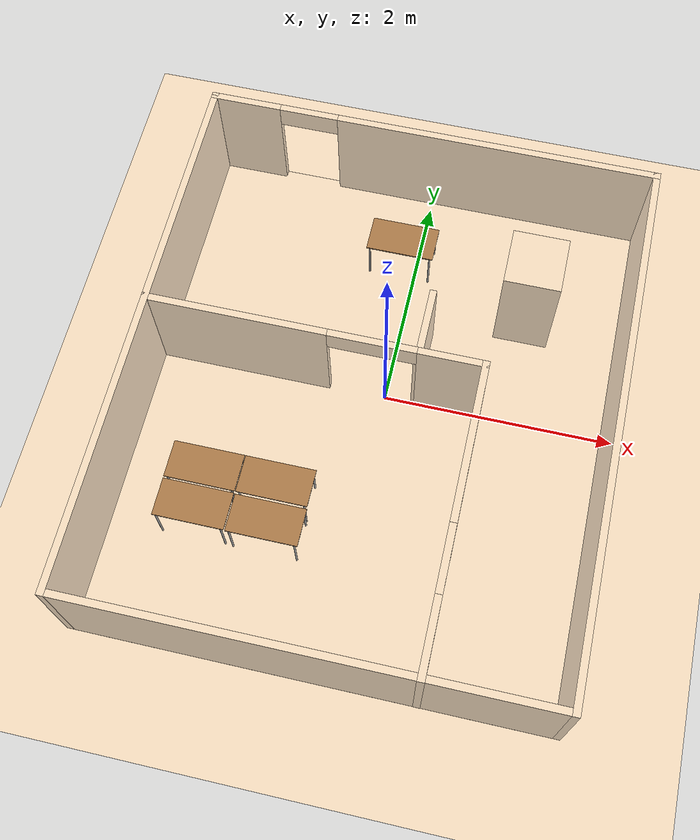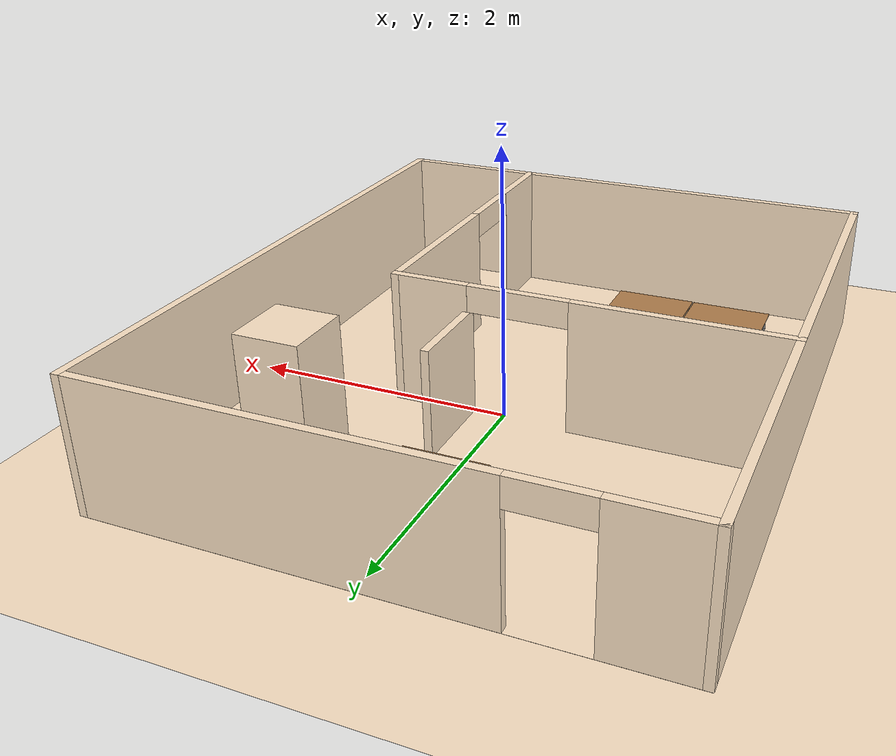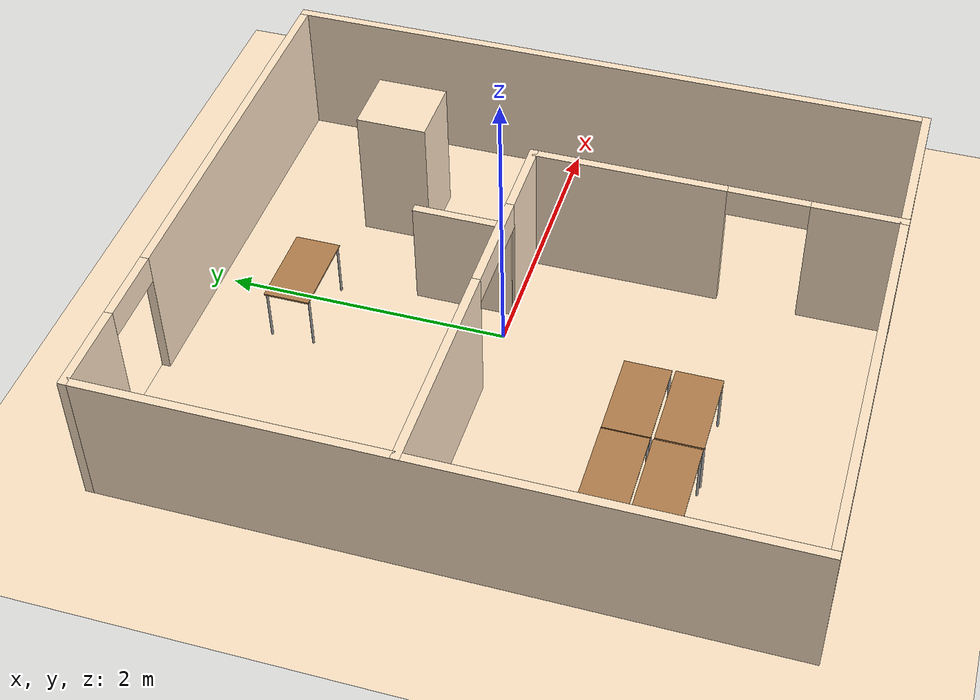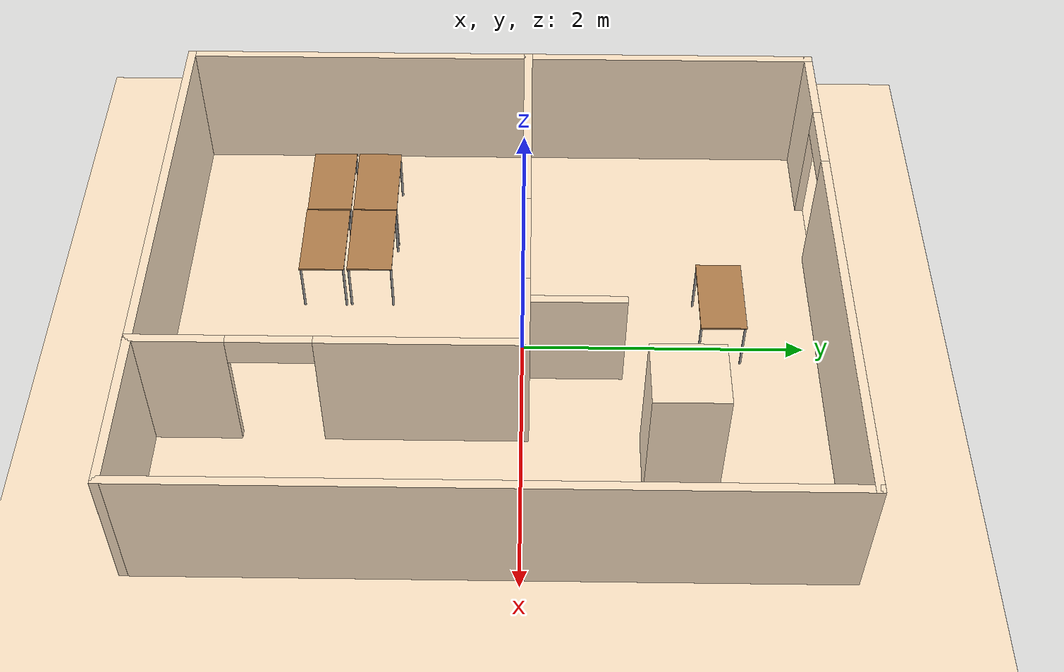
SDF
<sdf version="1.7">
 <world name="default">
  <light name="sun" type="directional">
   <pose>0 0 10 0 -0 0</pose>
   <diffuse>0.8 0.8 0.8 1</diffuse>
   <specular>0.2 0.2 0.2 1</specular>
   <attenuation>
    <range>1000</range>
    <constant>0.9</constant>
    <linear>0.01</linear>
    <quadratic>0.001</quadratic>
   </attenuation>
   <direction>-0.5 0.1 -0.9</direction>
   <spot><inner_angle>0</inner_angle><outer_angle>0</outer_angle><falloff>0</falloff></spot>
  </light>
  <model name="ground_plane">
   <static>1</static>
   <link name="link">
    <collision name="collision">
     <geometry><plane><normal>0 0 1</normal><size>4 5</size></plane></geometry>
     <surface>
      <contact><collide_bitmask>65535</collide_bitmask></contact>
      <friction><ode><mu>100</mu><mu2>50</mu2></ode></friction>
     </surface>
    </collision>
    <visual name="visual">
     <cast_shadows>0</cast_shadows>
     <geometry><plane><normal>0 0 1</normal><size>4 5</size></plane></geometry>
     <material>
      <script><uri>file://media/materials/scripts/gazebo.material</uri><name>Gazebo/Grey</name></script>
      <ambient>1 0.901961 0.780392 1</ambient>
     </material>
    </visual>
   </link>
  </model>
  <gravity>0 0 -9.8</gravity>
  <magnetic_field>6e-06 2.3e-05 -4.2e-05</magnetic_field>
  <atmosphere type="adiabatic"/>
  <physics type="ode">
   <max_step_size>0.001</max_step_size>
   <real_time_factor>1</real_time_factor>
   <real_time_update_rate>1000</real_time_update_rate>
  </physics>
  <scene><ambient>0.4 0.4 0.4 1</ambient><background>0.7 0.7 0.7 1</background><shadows>1</shadows></scene>
  <audio><device>default</device></audio>
  <spherical_coordinates>
   <surface_model>EARTH_WGS84</surface_model>
   <latitude_deg>0</latitude_deg>
   <longitude_deg>0</longitude_deg>
   <elevation>0</elevation>
   <heading_deg>0</heading_deg>
  </spherical_coordinates>
  <include><uri>model://wall</uri><pose>-0.053344 -0.1996104 0 0 -0 0</pose></include>
  <include><uri>model://Table</uri><pose>-1.27677 -1.09894 0 0 -0 0</pose><name>Table_0</name></include>
  <include><uri>model://Table</uri><pose>-0.668968 -1.09972 0 0 -0 0</pose><name>Table_1</name></include>
  <include><uri>model://Table</uri><pose>-1.275796 -1.436376 0 0 -0 0</pose><name>Table_2</name></include>
  <include><uri>model://Table</uri><pose>-0.664404 -1.441344 0 0 -0 0</pose><name>Table_3</name></include>
  <include><uri>model://Table</uri><pose>-0.1450252 1.390664 0 0 -0 0</pose><name>Table_4</name></include>
 </world>
</sdf>

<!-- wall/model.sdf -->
<sdf version='1.7'>
  <model name='wall_scaled'>
    <!-- 모델 전체 포즈 (스케일링 적용) -->
    <pose>0.665984 -1.08792 0 0 -0 0</pose>

    <!-- 바닥 링크 -->
    <link name="floor">
      <collision name="floor_collision">
        <geometry>
          <box>
            <size>4.0 4.7 0.0004</size>
          </box>
        </geometry>
        <pose>0 0.000834 0.0 0 0 0</pose>
      </collision>
      <visual name="floor_visual">
        <geometry>
          <box>
            <size>4.0 4.7 0.0004</size> <!-- 동일 -->
          </box>
        </geometry>
        <material>
          <script>
            <uri>file://media/materials/scripts/gazebo.material</uri>
            <name>Gazebo/Grey</name> <!-- 벽과 같은 색상 -->
          </script>
          <ambient>1 0.901961 0.780392 1</ambient>
        </material>
        <pose>0 0.000834 0.0 0 0 0</pose> <!-- 동일 -->
      </visual>
    </link>

    <!-- Wall_11 링크 -->
    <link name='Wall_11'>
      <collision name='Wall_11_Collision'>
        <geometry>
          <box>
            <size>4.7 0.06 1.0</size>
          </box>
        </geometry>
        <pose>0 0 0.5 0 -0 0</pose>
      </collision>
      <visual name='Wall_11_Visual'>
        <pose>0 0 0.5 0 -0 0</pose> <!-- 동일 -->
        <geometry>
          <box>
            <size>4.7 0.06 1.0</size> <!-- 동일 -->
          </box>
        </geometry>
        <material>
          <script>
            <uri>file://media/materials/scripts/gazebo.material</uri>
            <name>Gazebo/Grey</name>
          </script>
          <ambient>1 0.901961 0.780392 1</ambient>
        </material>
        <meta>
          <layer>0</layer>
        </meta>
      </visual>
      <pose>-1.97532 0.000834 0 0 -0 -1.5708</pose> <!-- x:-4.9383*0.4≈-1.97532, y:0.002085*0.4≈0.000834, z:0*0.4=0, yaw:-1.5708 -->
    </link>

    <!-- Wall_13 링크 -->
    <link name='Wall_13'>
      <collision name='Wall_13_Collision'>
        <geometry>
          <box>
            <size>4.7 0.06 1.0</size> <!-- 동일 -->
          </box>
        </geometry>
        <pose>0 0 0.5 0 -0 0</pose> <!-- 동일 -->
      </collision>
      <visual name='Wall_13_Visual'>
        <pose>0 0 0.5 0 -0 0</pose> <!-- 동일 -->
        <geometry>
          <box>
            <size>4.7 0.06 1.0</size> <!-- 동일 -->
          </box>
        </geometry>
        <material>
          <script>
            <uri>file://media/materials/scripts/gazebo.material</uri>
            <name>Gazebo/Grey</name>
          </script>
          <ambient>1 0.901961 0.780392 1</ambient>
        </material>
        <meta>
          <layer>0</layer>
        </meta>
      </visual>
      <pose>1.97532 0.000834 0 0 -0 -1.5708</pose> <!-- x:4.9383*0.4≈1.97532, y:0.002085*0.4≈0.000834, yaw:-1.5708 -->
    </link>

    <!-- Wall_17 링크 -->
    <link name='Wall_17'>
      <collision name='Wall_17_Collision'>
        <geometry>
          <box>
            <size>4.01064 0.06 1.0</size>
          </box>
        </geometry>
        <pose>0 0 0.5 0 -0 0</pose> <!-- 동일 -->
      </collision>
      <visual name='Wall_17_Visual'>
        <pose>0 0 0.5 0 -0 0</pose> <!-- 동일 -->
        <geometry>
          <box>
            <size>4.01064 0.06 1.0</size> <!-- 동일 -->
          </box>
        </geometry>
        <material>
          <script>
            <uri>file://media/materials/scripts/gazebo.material</uri>
            <name>Gazebo/Grey</name>
          </script>
          <ambient>1 0.901961 0.780392 1</ambient>
        </material>
        <meta>
          <layer>0</layer>
        </meta>
      </visual>
      <pose>0 -2.31916 0 0 -0 0</pose>
    </link>

    <!-- Wall_25 링크 -->
    <link name='Wall_25'>
      <pose>0.86568 -1.050836 0 0 -0 1.5708</pose> <!-- x:2.1642*0.4≈0.86568, y:-2.62709*0.4≈-1.050836, yaw:1.5708 -->

      <!-- Wall_25_Visual_0 -->
      <visual name='Wall_25_Visual_0'>
        <pose>-0.97362 0 0.5 0 -0 0</pose>
        <geometry>
          <box>
            <size>0.652764 0.06 1.0</size>
          </box>
        </geometry>
        <material>
          <script>
            <uri>file://media/materials/scripts/gazebo.material</uri>
            <name>Gazebo/Grey</name>
          </script>
          <ambient>1 0.901961 0.780392 1</ambient>
        </material>
        <meta>
          <layer>0</layer>
        </meta>
      </visual>

      <!-- Wall_25_Collision_0 -->
      <collision name='Wall_25_Collision_0'>
        <geometry>
          <box>
            <size>0.652764 0.06 1.0</size> <!-- 동일 -->
          </box>
        </geometry>
        <pose>-0.97362 0 0.5 0 -0 0</pose> <!-- 동일 -->
      </collision>

      <!-- Wall_25_Visual_1 -->
      <visual name='Wall_25_Visual_1'>
        <pose>0.60752 0 0.5 0 -0 0</pose>
        <geometry>
          <box>
            <size>1.38496 0.06 1.0</size>
          </box>
        </geometry>
        <material>
          <script>
            <uri>file://media/materials/scripts/gazebo.material</uri>
            <name>Gazebo/Grey</name>
          </script>
          <ambient>1 0.901961 0.780392 1</ambient>
        </material>
        <meta>
          <layer>0</layer>
        </meta>
      </visual>

      <!-- Wall_25_Collision_1 -->
      <collision name='Wall_25_Collision_1'>
        <geometry>
          <box>
            <size>1.38496 0.06 1.0</size> <!-- 동일 -->
          </box>
        </geometry>
        <pose>0.60752 0 0.5 0 -0 0</pose> <!-- 동일 -->
      </collision>

      <!-- Wall_25_Visual_2 -->
      <visual name='Wall_25_Visual_2'>
        <pose>-0.366099 0 0.9 0 -0 0</pose>
        <geometry>
          <box>
            <size>0.562276 0.06 0.2</size>
          </box>
        </geometry>
        <material>
          <script>
            <uri>file://media/materials/scripts/gazebo.material</uri>
            <name>Gazebo/Grey</name>
          </script>
          <ambient>1 0.901961 0.780392 1</ambient>
        </material>
        <meta>
          <layer>0</layer>
        </meta>
      </visual>

      <!-- Wall_25_Collision_2 -->
      <collision name='Wall_25_Collision_2'>
        <geometry>
          <box>
            <size>0.562276 0.06 0.2</size> <!-- 동일 -->
          </box>
        </geometry>
        <pose>-0.366099 0 0.9 0 -0 0</pose> <!-- 동일 -->
      </collision>
    </link>

    <!-- Wall_26 링크 -->
    <link name='Wall_26'>
      <pose>-0.55432 0.219166 0 0 -0 3.14159</pose> <!-- x:-1.3858*0.4≈-0.55432, y:0.547915*0.4≈0.219166, yaw:3.14159 -->

      <collision name='Wall_26_Collision_0'>
        <geometry>
          <box>
            <size>0.588512 0.06 1.0</size>
          </box>
        </geometry>
        <pose>-1.155744 0 0.5 0 -0 0</pose>
      </collision>
      <visual name='Wall_26_Visual_0'>
        <pose>-1.155744 0 0.5 0 -0 0</pose> <!-- 동일 -->
        <geometry>
          <box>
            <size>0.588512 0.06 1.0</size> <!-- 동일 -->
          </box>
        </geometry>
        <material>
          <script>
            <uri>file://media/materials/scripts/gazebo.material</uri>
            <name>Gazebo/Grey</name>
          </script>
          <ambient>1 0.901961 0.780392 1</ambient>
        </material>
        <meta>
          <layer>0</layer>
        </meta>
      </visual>

      <collision name='Wall_26_Collision_1'>
        <geometry>
          <box>
            <size>1.563116 0.06 1.0</size>
          </box>
        </geometry>
        <pose>0.668444 0 0.5 0 -0 3.14159</pose> <!-- x:0.668444, y:0, z:0.5, yaw:3.14159 -->
      </collision>
      <visual name='Wall_26_Visual_1'>
        <pose>0.668444 0 0.5 0 -0 3.14159</pose> <!-- x:1.67111*0.4≈0.668444, y:0, z:1.25*0.4=0.5, yaw:3.14159 -->
        <geometry>
          <box>
            <size>1.563116 0.06 1.0</size> <!-- 동일 -->
          </box>
        </geometry>
        <material>
          <script>
            <uri>file://media/materials/scripts/gazebo.material</uri>
            <name>Gazebo/Grey</name>
          </script>
          <ambient>1 0.901961 0.780392 1</ambient>
        </material>
        <meta>
          <layer>0</layer>
        </meta>
      </visual>

      <collision name='Wall_26_Collision_2'>
        <geometry>
          <box>
            <size>0.748372 0.06 0.2</size>
          </box>
        </geometry>
        <pose>-0.487298 0 0.9 0 -0 0</pose>
      </collision>
      <visual name='Wall_26_Visual_2'>
        <pose>-0.487298 0 0.9 0 -0 0</pose> <!-- 동일 -->
        <geometry>
          <box>
            <size>0.748372 0.06 0.2</size> <!-- 동일 -->
          </box>
        </geometry>
        <material>
          <script>
            <uri>file://media/materials/scripts/gazebo.material</uri>
            <name>Gazebo/Grey</name>
          </script>
          <ambient>1 0.901961 0.780392 1</ambient>
        </material>
        <meta>
          <layer>0</layer>
        </meta>
      </visual>
    </link>

    <!-- Wall_28 링크 -->
    <link name='Wall_28'>
      <collision name='Wall_28_Collision'>
        <geometry>
          <box>
            <size>0.7 0.06 0.8</size>
          </box>
        </geometry>
        <pose>0 0 0.4 0 -0 0</pose>
      </collision>
      <visual name='Wall_28_Visual'>
        <pose>0 0 0.4 0 -0 0</pose> <!-- 동일 -->
        <geometry>
          <box>
            <size>0.7 0.06 0.8</size> <!-- 동일 -->
          </box>
        </geometry>
        <material>
          <script>
            <uri>file://media/materials/scripts/gazebo.material</uri>
            <name>Gazebo/Grey</name>
          </script>
          <ambient>1 0.901961 0.780392 1</ambient>
        </material>
        <meta>
          <layer>0</layer>
        </meta>
      </visual>
      <pose>0.3092168 0.55352 0 0 -0 1.5708</pose> <!-- x:0.773042*0.4≈0.3092168, y:1.3838*0.4≈0.55352, yaw:1.5708 -->
    </link>

    <!-- Wall_32 링크 -->
    <link name='Wall_32'>
      <collision name='Wall_32_Collision'>
        <geometry>
          <box>
            <size>0.5 0.48 1.0</size>
          </box>
        </geometry>
        <pose>0 0 0.5 0 -0 0</pose>
      </collision>
      <visual name='Wall_32_Visual'>
        <pose>0 0 0.5 0 -0 0</pose> <!-- 동일 -->
        <geometry>
          <box>
            <size>0.5 0.48 1.0</size> <!-- 동일 -->
          </box>
        </geometry>
        <material>
          <script>
            <uri>file://media/materials/scripts/gazebo.material</uri>
            <name>Gazebo/Grey</name>
          </script>
          <ambient>1 0.901961 0.780392 1</ambient>
        </material>
        <meta>
          <layer>0</layer>
        </meta>
      </visual>
      <pose>1.106388 1.254576 0 0 -0 -1.5708</pose> <!-- x:2.76597*0.4≈1.106388, y:3.13644*0.4≈1.254576, yaw:-1.5708 -->
    </link>

    <!-- Wall_9 링크 -->
    <link name='Wall_9'>
      <pose>0 2.32083 0 0 -0 0</pose>

      <visual name='Wall_9_Visual_0'>
        <pose>-1.68861 0 0.5 0 -0 0</pose>
        <geometry>
          <box>
            <size>0.633416 0.06 1.0</size>
          </box>
        </geometry>
        <material>
          <script>
            <uri>file://media/materials/scripts/gazebo.material</uri>
            <name>Gazebo/Grey</name>
          </script>
          <ambient>1 0.901961 0.780392 1</ambient>
        </material>
        <meta>
          <layer>0</layer>
        </meta>
      </visual>

      <collision name='Wall_9_Collision_0'>
        <geometry>
          <box>
            <size>0.633416 0.06 1.0</size> <!-- 동일 -->
          </box>
        </geometry>
        <pose>-1.68861 0 0.5 0 -0 0</pose> <!-- 동일 -->
      </collision>

      <visual name='Wall_9_Visual_1'>
        <pose>0.57762 0 0.5 0 -0 0</pose>
        <geometry>
          <box>
            <size>2.855404 0.06 1.0</size>
          </box>
        </geometry>
        <material>
          <script>
            <uri>file://media/materials/scripts/gazebo.material</uri>
            <name>Gazebo/Grey</name>
          </script>
          <ambient>1 0.901961 0.780392 1</ambient>
        </material>
        <meta>
          <layer>0</layer>
        </meta>
      </visual>

      <collision name='Wall_9_Collision_1'>
        <geometry>
          <box>
            <size>2.855404 0.06 1.0</size> <!-- 동일 -->
          </box>
        </geometry>
        <pose>0.57762 0 0.5 0 -0 0</pose> <!-- 동일 -->
      </collision>

      <visual name='Wall_9_Visual_2'>
        <pose>-1.11099 0 0.9 0 -0 0</pose>
        <geometry>
          <box>
            <size>0.521824 0.06 0.2</size>
          </box>
        </geometry>
        <material>
          <script>
            <uri>file://media/materials/scripts/gazebo.material</uri>
            <name>Gazebo/Grey</name>
          </script>
          <ambient>1 0.901961 0.780392 1</ambient>
        </material>
        <meta>
          <layer>0</layer>
        </meta>
      </visual>

      <collision name='Wall_9_Collision_2'>
        <geometry>
          <box>
            <size>0.521824 0.06 0.2</size> <!-- 동일 -->
          </box>
        </geometry>
        <pose>-1.11099 0 0.9 0 -0 0</pose> <!-- 동일 -->
      </collision>
    </link>

    <!-- 전체 모델을 정적으로 설정 -->
    <static>true</static>
  </model>
</sdf>

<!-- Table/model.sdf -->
<sdf version="1.5">
  <model name="Table">
    <static>true</static>
    <link name="Table_link_${model.name}">
      <!-- Collision: surface -->
      <collision name="Table_surface_${model.name}">
        <pose>0 0 0.4 0 0 0</pose>
        <geometry>
          <box>
            <size>0.6 0.32 0.012</size>
          </box>
        </geometry>
        <surface>
          <friction>
            <ode>
              <mu>0.6</mu>
              <mu2>0.6</mu2>
            </ode>
          </friction>
        </surface>
      </collision>
      <!-- Visual: visual1 -->
      <visual name="Table_visual1_${model.name}">
        <pose>0 0 0.4 0 0 0</pose>
        <geometry>
          <box>
            <size>0.6 0.32 0.012</size>
          </box>
        </geometry>
        <material>
          <diffuse>1.0 1.0 1.0</diffuse>
          <script>
            <uri>file://media/materials/scripts/gazebo.material</uri>
            <name>Gazebo/Wood</name>
          </script>
          <!-- PBR for Ignition, material scripts for gazebo classic-->
          <pbr>
            <metal>
              <albedo_map>model://Table/Table_Diffuse.jpg</albedo_map>
            </metal>
          </pbr>
        </material>
      </visual>
      <!-- Collision: front_left_leg -->
      <collision name="Table_front_left_leg_${model.name}">
        <pose>0.272 0.152 0.2 0 0 0</pose>
        <geometry>
          <cylinder>
            <radius>0.008</radius>
            <length>0.4</length>
          </cylinder>
        </geometry>
      </collision>
      <!-- Visual: front_left_leg -->
      <visual name="Table_front_left_leg_visual_${model.name}">
        <pose>0.272 0.152 0.2 0 0 0</pose> <!-- 동일 -->
        <geometry>
          <cylinder>
            <radius>0.008</radius>
            <length>0.4</length>
          </cylinder>
        </geometry>
        <material>
          <diffuse>0.5 0.5 0.5</diffuse>
          <script>
            <uri>file://media/materials/scripts/gazebo.material</uri>
            <name>Gazebo/Grey</name>
          </script>
        </material>
      </visual>
      <!-- Collision: front_right_leg -->
      <collision name="Table_front_right_leg_${model.name}">
        <pose>0.272 -0.152 0.2 0 0 0</pose>
        <geometry>
          <cylinder>
            <radius>0.008</radius>
            <length>0.4</length>
          </cylinder>
        </geometry>
      </collision>
      <!-- Visual: front_right_leg -->
      <visual name="Table_front_right_leg_visual_${model.name}">
        <pose>0.272 -0.152 0.2 0 0 0</pose> <!-- 동일 -->
        <geometry>
          <cylinder>
            <radius>0.008</radius>
            <length>0.4</length>
          </cylinder>
        </geometry>
        <material>
          <diffuse>0.5 0.5 0.5</diffuse>
          <script>
            <uri>file://media/materials/scripts/gazebo.material</uri>
            <name>Gazebo/Grey</name>
          </script>
        </material>
      </visual>
      <!-- Collision: back_right_leg -->
      <collision name="Table_back_right_leg_${model.name}">
        <pose>-0.272 -0.152 0.2 0 0 0</pose>
        <geometry>
          <cylinder>
            <radius>0.008</radius>
            <length>0.4</length>
          </cylinder>
        </geometry>
      </collision>
      <!-- Visual: back_right_leg -->
      <visual name="Table_back_right_leg_visual_${model.name}">
        <pose>-0.272 -0.152 0.2 0 0 0</pose> <!-- 동일 -->
        <geometry>
          <cylinder>
            <radius>0.008</radius>
            <length>0.4</length>
          </cylinder>
        </geometry>
        <material>
          <diffuse>0.5 0.5 0.5</diffuse>
          <script>
            <uri>file://media/materials/scripts/gazebo.material</uri>
            <name>Gazebo/Grey</name>
          </script>
        </material>
      </visual>
      <!-- Collision: back_left_leg -->
      <collision name="Table_back_left_leg_${model.name}">
        <pose>-0.272 0.152 0.2 0 0 0</pose>
        <geometry>
          <cylinder>
            <radius>0.008</radius>
            <length>0.4</length>
          </cylinder>
        </geometry>
      </collision>
      <!-- Visual: back_left_leg -->
      <visual name="Table_back_left_leg_visual_${model.name}">
        <pose>-0.272 0.152 0.2 0 0 0</pose> <!-- 동일 -->
        <geometry>
          <cylinder>
            <radius>0.008</radius>
            <length>0.4</length>
          </cylinder>
        </geometry>
        <material>
          <diffuse>0.5 0.5 0.5</diffuse>
          <script>
            <uri>file://media/materials/scripts/gazebo.material</uri>
            <name>Gazebo/Grey</name>
          </script>
        </material>
      </visual>
    </link>
  </model>
</sdf>
